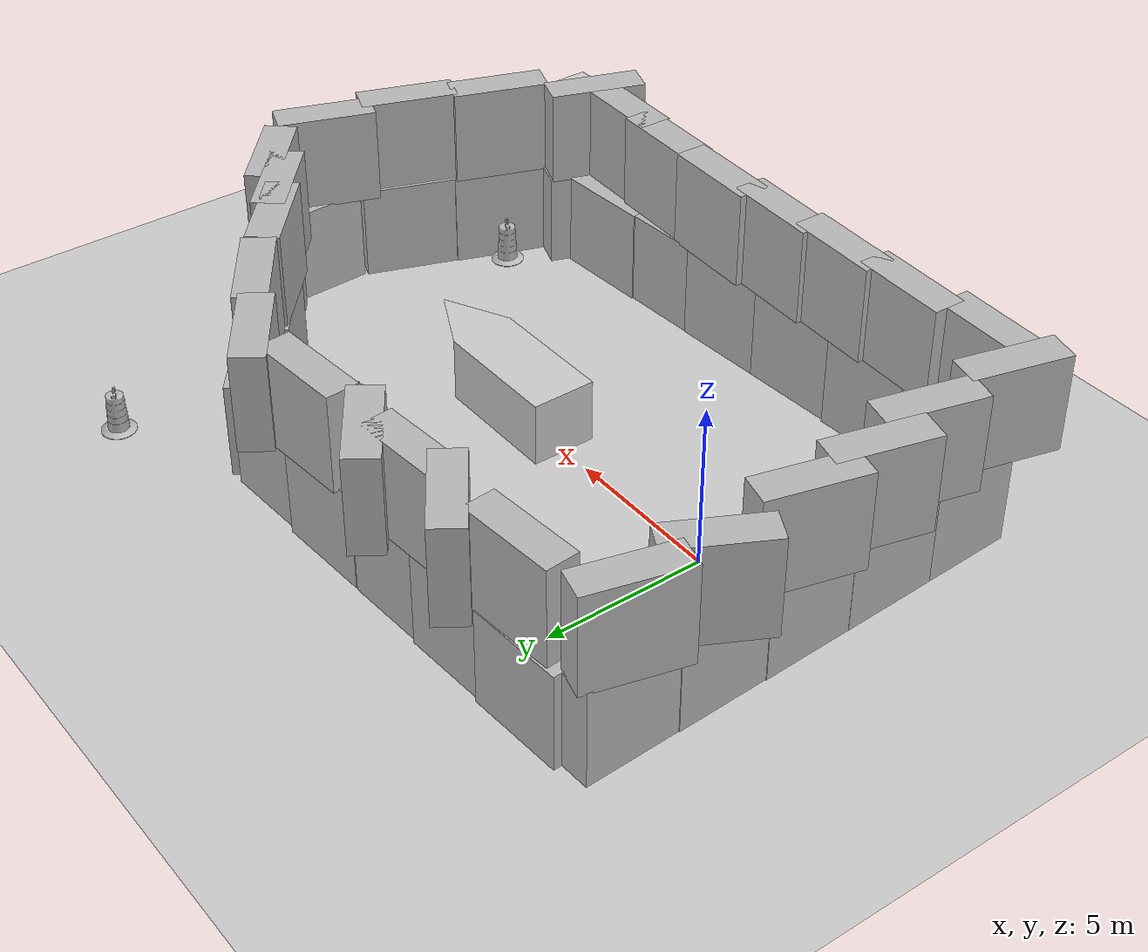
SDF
<sdf version="1.7">
 <world name="ship_world_vins">
  <light name="sun" type="directional">
   <pose>0 0 10 0 -0 0</pose>
   <diffuse>0.8 0.8 0.8 1</diffuse>
   <specular>0.2 0.2 0.2 1</specular>
   <attenuation>
    <range>1000</range>
    <constant>0.9</constant>
    <linear>0.01</linear>
    <quadratic>0.001</quadratic>
   </attenuation>
   <direction>-0.5 0.1 -0.9</direction>
   <spot><inner_angle>0</inner_angle><outer_angle>0</outer_angle><falloff>0</falloff></spot>
  </light>
  <model name="ground_plane">
   <static>1</static>
   <link name="link">
    <collision name="collision">
     <geometry><plane><normal>0 0 1</normal><size>100 100</size></plane></geometry>
     <surface>
      <contact><collide_bitmask>65535</collide_bitmask></contact>
      <friction><ode><mu>100</mu><mu2>50</mu2></ode></friction>
     </surface>
    </collision>
    <visual name="visual">
     <cast_shadows>0</cast_shadows>
     <geometry><plane><normal>0 0 1</normal><size>100 100</size></plane></geometry>
     <material>
      <script><uri>file://media/materials/scripts/gazebo.material</uri><name>Gazebo/Grey</name></script>
     </material>
    </visual>
   </link>
  </model>
  <light name="sunlight" type="directional">
   <pose>0 0 10 0 -0 0</pose>
   <diffuse>0.8 0.8 0.8 1</diffuse>
   <specular>0.2 0.2 0.2 1</specular>
   <attenuation>
    <range>1000</range>
    <constant>0.9</constant>
    <linear>0.01</linear>
    <quadratic>0.001</quadratic>
   </attenuation>
   <direction>-0.5 0.1 -0.9</direction>
   <spot><inner_angle>0</inner_angle><outer_angle>0</outer_angle><falloff>0</falloff></spot>
  </light>
  <light name="ambient_light" type="ambient">
   <direction>0 0 -1</direction>
   <attenuation><range>10</range></attenuation>
   <spot><inner_angle>0</inner_angle><outer_angle>0</outer_angle><falloff>0</falloff></spot>
   <color>0.4 0.4 0.4 1</color>
  </light>
  <model name="vins_feature_1">
   <static>1</static>
   <link name="link">
    <inertial><mass>1</mass></inertial>
    <collision name="back">
     <pose>0 0.005 0.6 0 -0 0</pose>
     <geometry><box><size>0.9 0.01 1.2</size></box></geometry>
    </collision>
    <visual name="visual1">
     <pose>0 0.005 0.6 0 -0 0</pose>
     <geometry><box><size>0.9 0.01 1.2</size></box></geometry>
     <material>
      <script><uri>file://media/materials/scripts/gazebo.material</uri><name>Gazebo/Wood</name></script>
     </material>
    </visual>
    <collision name="left_side">
     <pose>0.45 -0.195 0.6 0 -0 0</pose>
     <geometry><box><size>0.02 0.4 1.2</size></box></geometry>
    </collision>
    <visual name="visual2">
     <pose>0.45 -0.195 0.6 0 -0 0</pose>
     <geometry><box><size>0.02 0.4 1.2</size></box></geometry>
     <material>
      <script><uri>file://media/materials/scripts/gazebo.material</uri><name>Gazebo/Wood</name></script>
     </material>
    </visual>
    <collision name="right_side">
     <pose>-0.45 -0.195 0.6 0 -0 0</pose>
     <geometry><box><size>0.02 0.4 1.2</size></box></geometry>
    </collision>
    <visual name="visual3">
     <pose>-0.45 -0.195 0.6 0 -0 0</pose>
     <geometry><box><size>0.02 0.4 1.2</size></box></geometry>
     <material>
      <script><uri>file://media/materials/scripts/gazebo.material</uri><name>Gazebo/Wood</name></script>
     </material>
    </visual>
    <collision name="bottom">
     <pose>0 -0.195 0.03 0 -0 0</pose>
     <geometry><box><size>0.88 0.4 0.06</size></box></geometry>
    </collision>
    <visual name="visual4">
     <pose>0 -0.195 0.03 0 -0 0</pose>
     <geometry><box><size>0.88 0.4 0.06</size></box></geometry>
     <material>
      <script><uri>file://media/materials/scripts/gazebo.material</uri><name>Gazebo/Wood</name></script>
     </material>
    </visual>
    <collision name="top">
     <pose>0 -0.195 1.19 0 -0 0</pose>
     <geometry><box><size>0.88 0.4 0.02</size></box></geometry>
    </collision>
    <visual name="visual5">
     <pose>0 -0.195 1.19 0 -0 0</pose>
     <geometry><box><size>0.88 0.4 0.02</size></box></geometry>
     <material>
      <script><uri>file://media/materials/scripts/gazebo.material</uri><name>Gazebo/Wood</name></script>
     </material>
    </visual>
    <collision name="low_shelf">
     <pose>0 -0.195 0.43 0 -0 0</pose>
     <geometry><box><size>0.88 0.4 0.02</size></box></geometry>
    </collision>
    <visual name="visual6">
     <pose>0 -0.195 0.43 0 -0 0</pose>
     <geometry><box><size>0.88 0.4 0.02</size></box></geometry>
     <material>
      <script><uri>file://media/materials/scripts/gazebo.material</uri><name>Gazebo/Wood</name></script>
     </material>
    </visual>
    <collision name="high_shelf">
     <pose>0 -0.195 0.8 0 -0 0</pose>
     <geometry><box><size>0.88 0.4 0.02</size></box></geometry>
    </collision>
    <visual name="visual7">
     <pose>0 -0.195 0.8 0 -0 0</pose>
     <geometry><box><size>0.88 0.4 0.02</size></box></geometry>
     <material>
      <script><uri>file://media/materials/scripts/gazebo.material</uri><name>Gazebo/Wood</name></script>
     </material>
    </visual>
   </link>
   <pose>10.9332 4.81729 0 0 -0 1.40247</pose>
  </model>
  <model name="vins_feature_2">
   <link name="link">
    <inertial>
     <pose>0 0 0.4 0 -0 0</pose>
     <mass>500</mass>
     <inertia><ixx>51.2096</ixx><iyy>51.2096</iyy><izz>25</izz><ixy>0</ixy><ixz>0</ixz><iyz>0</iyz></inertia>
    </inertial>
    <collision name="collision">
     <geometry><mesh><uri>model://construction_barrel/meshes/construction_barrel.dae</uri></mesh></geometry>
    </collision>
    <visual name="visual">
     <geometry><mesh><uri>model://construction_barrel/meshes/construction_barrel.dae</uri></mesh></geometry>
    </visual>
   </link>
   <pose>13.3741 10.1126 0.891225 0 -0 2.65101</pose>
   <static>1</static>
  </model>
  <model name="vins_feature_12">
   <static>1</static>
   <link name="chassis">
    <pose>0 0 1.5 0 -0 0</pose>
    <collision name="collision"><geometry><box><size>3 1 3</size></box></geometry></collision>
    <visual name="visual">
     <geometry><mesh><uri>model://brick_box_3x1x3/meshes/simple_box.dae</uri><scale>3 1 3</scale></mesh></geometry>
     <material>
      <script>
       <uri>model://brick_box_3x1x3/materials/scripts</uri>
       <uri>model://brick_box_3x1x3/materials/textures</uri>
       <name>BrickBox/Diffuse</name>
      </script>
     </material>
    </visual>
   </link>
   <pose>17.1535 -2.10097 0 0 -0 1.22186</pose>
  </model>
  <physics type="ode">
   <max_step_size>0.002</max_step_size>
   <real_time_factor>1</real_time_factor>
   <real_time_update_rate>500</real_time_update_rate>
   <gravity>0 0 -9.81</gravity>
  </physics>
  <scene>
   <ambient>0.4 0.4 0.4 1</ambient>
   <background>0.7 0.8 1 1</background>
   <shadows>1</shadows>
   <grid>1</grid>
  </scene>
  <gravity>0 0 -9.8</gravity>
  <magnetic_field>6e-06 2.3e-05 -4.2e-05</magnetic_field>
  <atmosphere type="adiabatic"/>
  <spherical_coordinates>
   <surface_model>EARTH_WGS84</surface_model>
   <latitude_deg>0</latitude_deg>
   <longitude_deg>0</longitude_deg>
   <elevation>0</elevation>
   <heading_deg>0</heading_deg>
  </spherical_coordinates>
  <model name="vins_feature_12_clone">
   <static>1</static>
   <link name="chassis">
    <pose>0 0 1.5 0 -0 0</pose>
    <collision name="collision"><geometry><box><size>3 1 3</size></box></geometry></collision>
    <visual name="visual">
     <geometry><mesh><uri>model://brick_box_3x1x3/meshes/simple_box.dae</uri><scale>3 1 3</scale></mesh></geometry>
     <material>
      <script>
       <uri>model://brick_box_3x1x3/materials/scripts</uri>
       <uri>model://brick_box_3x1x3/materials/textures</uri>
       <name>BrickBox/Diffuse</name>
      </script>
     </material>
    </visual>
   </link>
   <pose>16.1084 -4.86008 0 0 -0 1.22186</pose>
  </model>
  <model name="vins_feature_12_clone_0">
   <static>1</static>
   <link name="chassis">
    <pose>0 0 1.5 0 -0 0</pose>
    <collision name="collision"><geometry><box><size>3 1 3</size></box></geometry></collision>
    <visual name="visual">
     <geometry><mesh><uri>model://brick_box_3x1x3/meshes/simple_box.dae</uri><scale>3 1 3</scale></mesh></geometry>
     <material>
      <script>
       <uri>model://brick_box_3x1x3/materials/scripts</uri>
       <uri>model://brick_box_3x1x3/materials/textures</uri>
       <name>BrickBox/Diffuse</name>
      </script>
     </material>
    </visual>
   </link>
   <pose>14.284 -7.27429 0 0 -0 1.22186</pose>
  </model>
  <model name="vins_feature_12_clone_1">
   <static>1</static>
   <link name="chassis">
    <pose>0 0 1.5 0 -0 0</pose>
    <collision name="collision"><geometry><box><size>3 1 3</size></box></geometry></collision>
    <visual name="visual">
     <geometry><mesh><uri>model://brick_box_3x1x3/meshes/simple_box.dae</uri><scale>3 1 3</scale></mesh></geometry>
     <material>
      <script>
       <uri>model://brick_box_3x1x3/materials/scripts</uri>
       <uri>model://brick_box_3x1x3/materials/textures</uri>
       <name>BrickBox/Diffuse</name>
      </script>
     </material>
    </visual>
   </link>
   <pose>7.17482 -7.1618 0 0 -0 0.055058</pose>
  </model>
  <model name="vins_feature_12_clone_1_clone">
   <static>1</static>
   <link name="chassis">
    <pose>0 0 1.5 0 -0 0</pose>
    <collision name="collision"><geometry><box><size>3 1 3</size></box></geometry></collision>
    <visual name="visual">
     <geometry><mesh><uri>model://brick_box_3x1x3/meshes/simple_box.dae</uri><scale>3 1 3</scale></mesh></geometry>
     <material>
      <script>
       <uri>model://brick_box_3x1x3/materials/scripts</uri>
       <uri>model://brick_box_3x1x3/materials/textures</uri>
       <name>BrickBox/Diffuse</name>
      </script>
     </material>
    </visual>
   </link>
   <pose>4.25347 -7.31543 0 0 -0 0.055058</pose>
  </model>
  <model name="vins_feature_12_clone_1_clone_0">
   <static>1</static>
   <link name="chassis">
    <pose>0 0 1.5 0 -0 0</pose>
    <collision name="collision"><geometry><box><size>3 1 3</size></box></geometry></collision>
    <visual name="visual">
     <geometry><mesh><uri>model://brick_box_3x1x3/meshes/simple_box.dae</uri><scale>3 1 3</scale></mesh></geometry>
     <material>
      <script>
       <uri>model://brick_box_3x1x3/materials/scripts</uri>
       <uri>model://brick_box_3x1x3/materials/textures</uri>
       <name>BrickBox/Diffuse</name>
      </script>
     </material>
    </visual>
   </link>
   <pose>1.23373 -7.41035 0 0 -0 0.055058</pose>
  </model>
  <model name="vins_feature_12_clone_1_clone_1">
   <static>1</static>
   <link name="chassis">
    <pose>0 0 1.5 0 -0 0</pose>
    <collision name="collision"><geometry><box><size>3 1 3</size></box></geometry></collision>
    <visual name="visual">
     <geometry><mesh><uri>model://brick_box_3x1x3/meshes/simple_box.dae</uri><scale>3 1 3</scale></mesh></geometry>
     <material>
      <script>
       <uri>model://brick_box_3x1x3/materials/scripts</uri>
       <uri>model://brick_box_3x1x3/materials/textures</uri>
       <name>BrickBox/Diffuse</name>
      </script>
     </material>
    </visual>
   </link>
   <pose>-1.64191 -7.50931 0 0 -0 0.055058</pose>
  </model>
  <model name="vins_feature_12_clone_1_clone_2">
   <static>1</static>
   <link name="chassis">
    <pose>0 0 1.5 0 -0 0</pose>
    <collision name="collision"><geometry><box><size>3 1 3</size></box></geometry></collision>
    <visual name="visual">
     <geometry><mesh><uri>model://brick_box_3x1x3/meshes/simple_box.dae</uri><scale>3 1 3</scale></mesh></geometry>
     <material>
      <script>
       <uri>model://brick_box_3x1x3/materials/scripts</uri>
       <uri>model://brick_box_3x1x3/materials/textures</uri>
       <name>BrickBox/Diffuse</name>
      </script>
     </material>
    </visual>
   </link>
   <pose>-3.65107 -5.62983 0 0 0 -1.52881</pose>
  </model>
  <model name="vins_feature_12_clone_1_clone_2_clone">
   <static>1</static>
   <link name="chassis">
    <pose>0 0 1.5 0 -0 0</pose>
    <collision name="collision"><geometry><box><size>3 1 3</size></box></geometry></collision>
    <visual name="visual">
     <geometry><mesh><uri>model://brick_box_3x1x3/meshes/simple_box.dae</uri><scale>3 1 3</scale></mesh></geometry>
     <material>
      <script>
       <uri>model://brick_box_3x1x3/materials/scripts</uri>
       <uri>model://brick_box_3x1x3/materials/textures</uri>
       <name>BrickBox/Diffuse</name>
      </script>
     </material>
    </visual>
   </link>
   <pose>-3.77071 -2.82657 0 0 0 -1.52881</pose>
  </model>
  <model name="vins_feature_12_clone_1_clone_2_clone_0">
   <static>1</static>
   <link name="chassis">
    <pose>0 0 1.5 0 -0 0</pose>
    <collision name="collision"><geometry><box><size>3 1 3</size></box></geometry></collision>
    <visual name="visual">
     <geometry><mesh><uri>model://brick_box_3x1x3/meshes/simple_box.dae</uri><scale>3 1 3</scale></mesh></geometry>
     <material>
      <script>
       <uri>model://brick_box_3x1x3/materials/scripts</uri>
       <uri>model://brick_box_3x1x3/materials/textures</uri>
       <name>BrickBox/Diffuse</name>
      </script>
     </material>
    </visual>
   </link>
   <pose>-3.88501 0.04497 0 0 0 -1.52881</pose>
  </model>
  <model name="vins_feature_12_clone_1_clone_2_clone_1">
   <static>1</static>
   <link name="chassis">
    <pose>0 0 1.5 0 -0 0</pose>
    <collision name="collision"><geometry><box><size>3 1 3</size></box></geometry></collision>
    <visual name="visual">
     <geometry><mesh><uri>model://brick_box_3x1x3/meshes/simple_box.dae</uri><scale>3 1 3</scale></mesh></geometry>
     <material>
      <script>
       <uri>model://brick_box_3x1x3/materials/scripts</uri>
       <uri>model://brick_box_3x1x3/materials/textures</uri>
       <name>BrickBox/Diffuse</name>
      </script>
     </material>
    </visual>
   </link>
   <pose>-3.98219 2.91307 0 0 0 -1.52881</pose>
  </model>
  <model name="vins_feature_12_clone_1_clone_2_clone_2">
   <static>1</static>
   <link name="chassis">
    <pose>0 0 1.5 0 -0 0</pose>
    <collision name="collision"><geometry><box><size>3 1 3</size></box></geometry></collision>
    <visual name="visual">
     <geometry><mesh><uri>model://brick_box_3x1x3/meshes/simple_box.dae</uri><scale>3 1 3</scale></mesh></geometry>
     <material>
      <script>
       <uri>model://brick_box_3x1x3/materials/scripts</uri>
       <uri>model://brick_box_3x1x3/materials/textures</uri>
       <name>BrickBox/Diffuse</name>
      </script>
     </material>
    </visual>
   </link>
   <pose>-4.07822 5.80501 0 0 0 -1.52881</pose>
  </model>
  <model name="vins_feature_12_clone_1_clone_3">
   <static>1</static>
   <link name="chassis">
    <pose>0 0 1.5 0 -0 0</pose>
    <collision name="collision"><geometry><box><size>3 1 3</size></box></geometry></collision>
    <visual name="visual">
     <geometry><mesh><uri>model://brick_box_3x1x3/meshes/simple_box.dae</uri><scale>3 1 3</scale></mesh></geometry>
     <material>
      <script>
       <uri>model://brick_box_3x1x3/materials/scripts</uri>
       <uri>model://brick_box_3x1x3/materials/textures</uri>
       <name>BrickBox/Diffuse</name>
      </script>
     </material>
    </visual>
   </link>
   <pose>-2.21839 7.1515 0 0 -0 0.055058</pose>
  </model>
  <model name="vins_feature_12_clone_1_clone_4">
   <static>1</static>
   <link name="chassis">
    <pose>0 0 1.5 0 -0 0</pose>
    <collision name="collision"><geometry><box><size>3 1 3</size></box></geometry></collision>
    <visual name="visual">
     <geometry><mesh><uri>model://brick_box_3x1x3/meshes/simple_box.dae</uri><scale>3 1 3</scale></mesh></geometry>
     <material>
      <script>
       <uri>model://brick_box_3x1x3/materials/scripts</uri>
       <uri>model://brick_box_3x1x3/materials/textures</uri>
       <name>BrickBox/Diffuse</name>
      </script>
     </material>
    </visual>
   </link>
   <pose>0.451514 7.21112 0 0 -0 0.055058</pose>
  </model>
  <model name="vins_feature_12_clone_1_clone_5">
   <static>1</static>
   <link name="chassis">
    <pose>0 0 1.5 0 -0 0</pose>
    <collision name="collision"><geometry><box><size>3 1 3</size></box></geometry></collision>
    <visual name="visual">
     <geometry><mesh><uri>model://brick_box_3x1x3/meshes/simple_box.dae</uri><scale>3 1 3</scale></mesh></geometry>
     <material>
      <script>
       <uri>model://brick_box_3x1x3/materials/scripts</uri>
       <uri>model://brick_box_3x1x3/materials/textures</uri>
       <name>BrickBox/Diffuse</name>
      </script>
     </material>
    </visual>
   </link>
   <pose>3.0258 7.27709 0 0 -0 0.055058</pose>
  </model>
  <model name="vins_feature_12_clone_1_clone_6">
   <static>1</static>
   <link name="chassis">
    <pose>0 0 1.5 0 -0 0</pose>
    <collision name="collision"><geometry><box><size>3 1 3</size></box></geometry></collision>
    <visual name="visual">
     <geometry><mesh><uri>model://brick_box_3x1x3/meshes/simple_box.dae</uri><scale>3 1 3</scale></mesh></geometry>
     <material>
      <script>
       <uri>model://brick_box_3x1x3/materials/scripts</uri>
       <uri>model://brick_box_3x1x3/materials/textures</uri>
       <name>BrickBox/Diffuse</name>
      </script>
     </material>
    </visual>
   </link>
   <pose>6.08564 7.43302 0 0 -0 0.055058</pose>
  </model>
  <model name="vins_feature_12_clone_1_clone_7">
   <static>1</static>
   <link name="chassis">
    <pose>0 0 1.5 0 -0 0</pose>
    <collision name="collision"><geometry><box><size>3 1 3</size></box></geometry></collision>
    <visual name="visual">
     <geometry><mesh><uri>model://brick_box_3x1x3/meshes/simple_box.dae</uri><scale>3 1 3</scale></mesh></geometry>
     <material>
      <script>
       <uri>model://brick_box_3x1x3/materials/scripts</uri>
       <uri>model://brick_box_3x1x3/materials/textures</uri>
       <name>BrickBox/Diffuse</name>
      </script>
     </material>
    </visual>
   </link>
   <pose>8.81832 7.46001 0 0 -0 0.055058</pose>
  </model>
  <model name="vins_feature_12_clone_1_clone_8">
   <static>1</static>
   <link name="chassis">
    <pose>0 0 1.5 0 -0 0</pose>
    <collision name="collision"><geometry><box><size>3 1 3</size></box></geometry></collision>
    <visual name="visual">
     <geometry><mesh><uri>model://brick_box_3x1x3/meshes/simple_box.dae</uri><scale>3 1 3</scale></mesh></geometry>
     <material>
      <script>
       <uri>model://brick_box_3x1x3/materials/scripts</uri>
       <uri>model://brick_box_3x1x3/materials/textures</uri>
       <name>BrickBox/Diffuse</name>
      </script>
     </material>
    </visual>
   </link>
   <pose>11.5594 6.7674 0 0 0 -0.662959</pose>
  </model>
  <model name="vins_feature_12_clone_1_clone_8_clone">
   <static>1</static>
   <link name="chassis">
    <pose>0 0 1.5 0 -0 0</pose>
    <collision name="collision"><geometry><box><size>3 1 3</size></box></geometry></collision>
    <visual name="visual">
     <geometry><mesh><uri>model://brick_box_3x1x3/meshes/simple_box.dae</uri><scale>3 1 3</scale></mesh></geometry>
     <material>
      <script>
       <uri>model://brick_box_3x1x3/materials/scripts</uri>
       <uri>model://brick_box_3x1x3/materials/textures</uri>
       <name>BrickBox/Diffuse</name>
      </script>
     </material>
    </visual>
   </link>
   <pose>13.5456 4.68205 0 0 0 -0.662959</pose>
  </model>
  <model name="vins_feature_12_clone_1_clone_2_clone_2_clone">
   <static>1</static>
   <link name="chassis">
    <pose>0 0 1.5 0 -0 0</pose>
    <collision name="collision"><geometry><box><size>3 1 3</size></box></geometry></collision>
    <visual name="visual">
     <geometry><mesh><uri>model://brick_box_3x1x3/meshes/simple_box.dae</uri><scale>3 1 3</scale></mesh></geometry>
     <material>
      <script>
       <uri>model://brick_box_3x1x3/materials/scripts</uri>
       <uri>model://brick_box_3x1x3/materials/textures</uri>
       <name>BrickBox/Diffuse</name>
      </script>
     </material>
    </visual>
   </link>
   <pose>17.7059 1.06689 0 0 0 -1.52881</pose>
  </model>
  <model name="vins_feature_12_clone_0_clone">
   <static>1</static>
   <link name="chassis">
    <pose>0 0 1.5 0 -0 0</pose>
    <collision name="collision"><geometry><box><size>3 1 3</size></box></geometry></collision>
    <visual name="visual">
     <geometry><mesh><uri>model://brick_box_3x1x3/meshes/simple_box.dae</uri><scale>3 1 3</scale></mesh></geometry>
     <material>
      <script>
       <uri>model://brick_box_3x1x3/materials/scripts</uri>
       <uri>model://brick_box_3x1x3/materials/textures</uri>
       <name>BrickBox/Diffuse</name>
      </script>
     </material>
    </visual>
   </link>
   <pose>14.2449 -7.31994 2.9432 0 -0 1.22186</pose>
  </model>
  <model name="vins_feature_12_clone_0_clone_clone">
   <static>1</static>
   <link name="chassis">
    <pose>0 0 1.5 0 -0 0</pose>
    <collision name="collision"><geometry><box><size>3 1 3</size></box></geometry></collision>
    <visual name="visual">
     <geometry><mesh><uri>model://brick_box_3x1x3/meshes/simple_box.dae</uri><scale>3 1 3</scale></mesh></geometry>
     <material>
      <script>
       <uri>model://brick_box_3x1x3/materials/scripts</uri>
       <uri>model://brick_box_3x1x3/materials/textures</uri>
       <name>BrickBox/Diffuse</name>
      </script>
     </material>
    </visual>
   </link>
   <pose>16.0742 -4.91824 2.9432 0 -0 1.22186</pose>
  </model>
  <model name="vins_feature_12_clone_0_clone_clone_0">
   <static>1</static>
   <link name="chassis">
    <pose>0 0 1.5 0 -0 0</pose>
    <collision name="collision"><geometry><box><size>3 1 3</size></box></geometry></collision>
    <visual name="visual">
     <geometry><mesh><uri>model://brick_box_3x1x3/meshes/simple_box.dae</uri><scale>3 1 3</scale></mesh></geometry>
     <material>
      <script>
       <uri>model://brick_box_3x1x3/materials/scripts</uri>
       <uri>model://brick_box_3x1x3/materials/textures</uri>
       <name>BrickBox/Diffuse</name>
      </script>
     </material>
    </visual>
   </link>
   <pose>17.2031 -2.29228 2.9432 0 -0 1.22186</pose>
  </model>
  <model name="vins_feature_12_clone_0_clone_clone_1">
   <static>1</static>
   <link name="chassis">
    <pose>0 0 1.5 0 -0 0</pose>
    <collision name="collision"><geometry><box><size>3 1 3</size></box></geometry></collision>
    <visual name="visual">
     <geometry><mesh><uri>model://brick_box_3x1x3/meshes/simple_box.dae</uri><scale>3 1 3</scale></mesh></geometry>
     <material>
      <script>
       <uri>model://brick_box_3x1x3/materials/scripts</uri>
       <uri>model://brick_box_3x1x3/materials/textures</uri>
       <name>BrickBox/Diffuse</name>
      </script>
     </material>
    </visual>
   </link>
   <pose>17.7014 0.378235 2.9432 0 -0 1.22186</pose>
  </model>
  <model name="vins_feature_12_clone_0_clone_clone_2">
   <static>1</static>
   <link name="chassis">
    <pose>0 0 1.5 0 -0 0</pose>
    <collision name="collision"><geometry><box><size>3 1 3</size></box></geometry></collision>
    <visual name="visual">
     <geometry><mesh><uri>model://brick_box_3x1x3/meshes/simple_box.dae</uri><scale>3 1 3</scale></mesh></geometry>
     <material>
      <script>
       <uri>model://brick_box_3x1x3/materials/scripts</uri>
       <uri>model://brick_box_3x1x3/materials/textures</uri>
       <name>BrickBox/Diffuse</name>
      </script>
     </material>
    </visual>
   </link>
   <pose>13.6663 4.52867 2.9432 0 -0 2.41798</pose>
  </model>
  <model name="vins_feature_12_clone_0_clone_clone_3">
   <static>1</static>
   <link name="chassis">
    <pose>0 0 1.5 0 -0 0</pose>
    <collision name="collision"><geometry><box><size>3 1 3</size></box></geometry></collision>
    <visual name="visual">
     <geometry><mesh><uri>model://brick_box_3x1x3/meshes/simple_box.dae</uri><scale>3 1 3</scale></mesh></geometry>
     <material>
      <script>
       <uri>model://brick_box_3x1x3/materials/scripts</uri>
       <uri>model://brick_box_3x1x3/materials/textures</uri>
       <name>BrickBox/Diffuse</name>
      </script>
     </material>
    </visual>
   </link>
   <pose>11.3544 6.44078 2.9432 0 -0 2.53843</pose>
  </model>
  <model name="vins_feature_12_clone_0_clone_clone_3_clone">
   <static>1</static>
   <link name="chassis">
    <pose>0 0 1.5 0 -0 0</pose>
    <collision name="collision"><geometry><box><size>3 1 3</size></box></geometry></collision>
    <visual name="visual">
     <geometry><mesh><uri>model://brick_box_3x1x3/meshes/simple_box.dae</uri><scale>3 1 3</scale></mesh></geometry>
     <material>
      <script>
       <uri>model://brick_box_3x1x3/materials/scripts</uri>
       <uri>model://brick_box_3x1x3/materials/textures</uri>
       <name>BrickBox/Diffuse</name>
      </script>
     </material>
    </visual>
   </link>
   <pose>8.9737 7.88408 2.9432 0 -0 2.53843</pose>
  </model>
  <model name="vins_feature_12_clone_0_clone_clone_3_clone_0">
   <static>1</static>
   <link name="chassis">
    <pose>0 0 1.5 0 -0 0</pose>
    <collision name="collision"><geometry><box><size>3 1 3</size></box></geometry></collision>
    <visual name="visual">
     <geometry><mesh><uri>model://brick_box_3x1x3/meshes/simple_box.dae</uri><scale>3 1 3</scale></mesh></geometry>
     <material>
      <script>
       <uri>model://brick_box_3x1x3/materials/scripts</uri>
       <uri>model://brick_box_3x1x3/materials/textures</uri>
       <name>BrickBox/Diffuse</name>
      </script>
     </material>
    </visual>
   </link>
   <pose>6.57189 7.6482 2.9432 0 0 -3.06303</pose>
  </model>
  <model name="vins_feature_12_clone_0_clone_clone_3_clone_1">
   <static>1</static>
   <link name="chassis">
    <pose>0 0 1.5 0 -0 0</pose>
    <collision name="collision"><geometry><box><size>3 1 3</size></box></geometry></collision>
    <visual name="visual">
     <geometry><mesh><uri>model://brick_box_3x1x3/meshes/simple_box.dae</uri><scale>3 1 3</scale></mesh></geometry>
     <material>
      <script>
       <uri>model://brick_box_3x1x3/materials/scripts</uri>
       <uri>model://brick_box_3x1x3/materials/textures</uri>
       <name>BrickBox/Diffuse</name>
      </script>
     </material>
    </visual>
   </link>
   <pose>3.71285 7.79924 2.9432 0 -0 2.53843</pose>
  </model>
  <model name="vins_feature_12_clone_0_clone_clone_3_clone_2">
   <static>1</static>
   <link name="chassis">
    <pose>0 0 1.5 0 -0 0</pose>
    <collision name="collision"><geometry><box><size>3 1 3</size></box></geometry></collision>
    <visual name="visual">
     <geometry><mesh><uri>model://brick_box_3x1x3/meshes/simple_box.dae</uri><scale>3 1 3</scale></mesh></geometry>
     <material>
      <script>
       <uri>model://brick_box_3x1x3/materials/scripts</uri>
       <uri>model://brick_box_3x1x3/materials/textures</uri>
       <name>BrickBox/Diffuse</name>
      </script>
     </material>
    </visual>
   </link>
   <pose>0.352993 7.6035 2.9432 0 -0 2.53843</pose>
  </model>
  <model name="vins_feature_12_clone_0_clone_clone_3_clone_0_clone">
   <static>1</static>
   <link name="chassis">
    <pose>0 0 1.5 0 -0 0</pose>
    <collision name="collision"><geometry><box><size>3 1 3</size></box></geometry></collision>
    <visual name="visual">
     <geometry><mesh><uri>model://brick_box_3x1x3/meshes/simple_box.dae</uri><scale>3 1 3</scale></mesh></geometry>
     <material>
      <script>
       <uri>model://brick_box_3x1x3/materials/scripts</uri>
       <uri>model://brick_box_3x1x3/materials/textures</uri>
       <name>BrickBox/Diffuse</name>
      </script>
     </material>
    </visual>
   </link>
   <pose>2.2028 7.33983 2.9432 0 0 -3.06303</pose>
  </model>
  <model name="vins_feature_12_clone_0_clone_clone_3_clone_0_clone_0">
   <static>1</static>
   <link name="chassis">
    <pose>0 0 1.5 0 -0 0</pose>
    <collision name="collision"><geometry><box><size>3 1 3</size></box></geometry></collision>
    <visual name="visual">
     <geometry><mesh><uri>model://brick_box_3x1x3/meshes/simple_box.dae</uri><scale>3 1 3</scale></mesh></geometry>
     <material>
      <script>
       <uri>model://brick_box_3x1x3/materials/scripts</uri>
       <uri>model://brick_box_3x1x3/materials/textures</uri>
       <name>BrickBox/Diffuse</name>
      </script>
     </material>
    </visual>
   </link>
   <pose>-1.87481 7.13053 2.9432 0 0 -3.06303</pose>
  </model>
  <model name="vins_feature_12_clone_0_clone_clone_3_clone_0_clone_1">
   <static>1</static>
   <link name="chassis">
    <pose>0 0 1.5 0 -0 0</pose>
    <collision name="collision"><geometry><box><size>3 1 3</size></box></geometry></collision>
    <visual name="visual">
     <geometry><mesh><uri>model://brick_box_3x1x3/meshes/simple_box.dae</uri><scale>3 1 3</scale></mesh></geometry>
     <material>
      <script>
       <uri>model://brick_box_3x1x3/materials/scripts</uri>
       <uri>model://brick_box_3x1x3/materials/textures</uri>
       <name>BrickBox/Diffuse</name>
      </script>
     </material>
    </visual>
   </link>
   <pose>-4.43408 5.91316 2.9432 0 0 -1.82887</pose>
  </model>
  <model name="vins_feature_12_clone_0_clone_clone_3_clone_0_clone_1_clone">
   <static>1</static>
   <link name="chassis">
    <pose>0 0 1.5 0 -0 0</pose>
    <collision name="collision"><geometry><box><size>3 1 3</size></box></geometry></collision>
    <visual name="visual">
     <geometry><mesh><uri>model://brick_box_3x1x3/meshes/simple_box.dae</uri><scale>3 1 3</scale></mesh></geometry>
     <material>
      <script>
       <uri>model://brick_box_3x1x3/materials/scripts</uri>
       <uri>model://brick_box_3x1x3/materials/textures</uri>
       <name>BrickBox/Diffuse</name>
      </script>
     </material>
    </visual>
   </link>
   <pose>-4.62571 3.54857 2.9432 0 0 -2.06001</pose>
  </model>
  <model name="vins_feature_12_clone_0_clone_clone_3_clone_0_clone_1_clone_0">
   <static>1</static>
   <link name="chassis">
    <pose>0 0 1.5 0 -0 0</pose>
    <collision name="collision"><geometry><box><size>3 1 3</size></box></geometry></collision>
    <visual name="visual">
     <geometry><mesh><uri>model://brick_box_3x1x3/meshes/simple_box.dae</uri><scale>3 1 3</scale></mesh></geometry>
     <material>
      <script>
       <uri>model://brick_box_3x1x3/materials/scripts</uri>
       <uri>model://brick_box_3x1x3/materials/textures</uri>
       <name>BrickBox/Diffuse</name>
      </script>
     </material>
    </visual>
   </link>
   <pose>-4.36191 0.486087 2.9432 0 0 -1.82887</pose>
  </model>
  <model name="vins_feature_12_clone_0_clone_clone_3_clone_0_clone_1_clone_1">
   <static>1</static>
   <link name="chassis">
    <pose>0 0 1.5 0 -0 0</pose>
    <collision name="collision"><geometry><box><size>3 1 3</size></box></geometry></collision>
    <visual name="visual">
     <geometry><mesh><uri>model://brick_box_3x1x3/meshes/simple_box.dae</uri><scale>3 1 3</scale></mesh></geometry>
     <material>
      <script>
       <uri>model://brick_box_3x1x3/materials/scripts</uri>
       <uri>model://brick_box_3x1x3/materials/textures</uri>
       <name>BrickBox/Diffuse</name>
      </script>
     </material>
    </visual>
   </link>
   <pose>-4.30273 -1.83549 2.9432 0 0 -1.82887</pose>
  </model>
  <model name="vins_feature_12_clone_0_clone_clone_3_clone_0_clone_1_clone_2">
   <static>1</static>
   <link name="chassis">
    <pose>0 0 1.5 0 -0 0</pose>
    <collision name="collision"><geometry><box><size>3 1 3</size></box></geometry></collision>
    <visual name="visual">
     <geometry><mesh><uri>model://brick_box_3x1x3/meshes/simple_box.dae</uri><scale>3 1 3</scale></mesh></geometry>
     <material>
      <script>
       <uri>model://brick_box_3x1x3/materials/scripts</uri>
       <uri>model://brick_box_3x1x3/materials/textures</uri>
       <name>BrickBox/Diffuse</name>
      </script>
     </material>
    </visual>
   </link>
   <pose>-3.84586 -3.90694 2.9432 0 0 -1.82887</pose>
  </model>
  <model name="vins_feature_12_clone_0_clone_clone_3_clone_0_clone_1_clone_3">
   <static>1</static>
   <link name="chassis">
    <pose>0 0 1.5 0 -0 0</pose>
    <collision name="collision"><geometry><box><size>3 1 3</size></box></geometry></collision>
    <visual name="visual">
     <geometry><mesh><uri>model://brick_box_3x1x3/meshes/simple_box.dae</uri><scale>3 1 3</scale></mesh></geometry>
     <material>
      <script>
       <uri>model://brick_box_3x1x3/materials/scripts</uri>
       <uri>model://brick_box_3x1x3/materials/textures</uri>
       <name>BrickBox/Diffuse</name>
      </script>
     </material>
    </visual>
   </link>
   <pose>-3.86683 -6.85057 2.9432 0 0 -1.82887</pose>
  </model>
  <model name="vins_feature_12_clone_0_clone_clone_3_clone_0_clone_1_clone_3_clone">
   <static>1</static>
   <link name="chassis">
    <pose>0 0 1.5 0 -0 0</pose>
    <collision name="collision"><geometry><box><size>3 1 3</size></box></geometry></collision>
    <visual name="visual">
     <geometry><mesh><uri>model://brick_box_3x1x3/meshes/simple_box.dae</uri><scale>3 1 3</scale></mesh></geometry>
     <material>
      <script>
       <uri>model://brick_box_3x1x3/materials/scripts</uri>
       <uri>model://brick_box_3x1x3/materials/textures</uri>
       <name>BrickBox/Diffuse</name>
      </script>
     </material>
    </visual>
   </link>
   <pose>-2.44934 -7.56093 2.9432 0 0 -0.039864</pose>
  </model>
  <model name="vins_feature_12_clone_0_clone_clone_3_clone_0_clone_1_clone_3_clone_clone">
   <static>1</static>
   <link name="chassis">
    <pose>0 0 1.5 0 -0 0</pose>
    <collision name="collision"><geometry><box><size>3 1 3</size></box></geometry></collision>
    <visual name="visual">
     <geometry><mesh><uri>model://brick_box_3x1x3/meshes/simple_box.dae</uri><scale>3 1 3</scale></mesh></geometry>
     <material>
      <script>
       <uri>model://brick_box_3x1x3/materials/scripts</uri>
       <uri>model://brick_box_3x1x3/materials/textures</uri>
       <name>BrickBox/Diffuse</name>
      </script>
     </material>
    </visual>
   </link>
   <pose>0.250143 -7.28335 2.9432 0 0 -0.039864</pose>
  </model>
  <model name="vins_feature_12_clone_0_clone_clone_3_clone_0_clone_1_clone_3_clone_clone_0">
   <static>1</static>
   <link name="chassis">
    <pose>0 0 1.5 0 -0 0</pose>
    <collision name="collision"><geometry><box><size>3 1 3</size></box></geometry></collision>
    <visual name="visual">
     <geometry><mesh><uri>model://brick_box_3x1x3/meshes/simple_box.dae</uri><scale>3 1 3</scale></mesh></geometry>
     <material>
      <script>
       <uri>model://brick_box_3x1x3/materials/scripts</uri>
       <uri>model://brick_box_3x1x3/materials/textures</uri>
       <name>BrickBox/Diffuse</name>
      </script>
     </material>
    </visual>
   </link>
   <pose>2.79208 -7.20268 2.9432 0 0 -0.039864</pose>
  </model>
  <model name="vins_feature_12_clone_0_clone_clone_3_clone_0_clone_1_clone_3_clone_clone_1">
   <static>1</static>
   <link name="chassis">
    <pose>0 0 1.5 0 -0 0</pose>
    <collision name="collision"><geometry><box><size>3 1 3</size></box></geometry></collision>
    <visual name="visual">
     <geometry><mesh><uri>model://brick_box_3x1x3/meshes/simple_box.dae</uri><scale>3 1 3</scale></mesh></geometry>
     <material>
      <script>
       <uri>model://brick_box_3x1x3/materials/scripts</uri>
       <uri>model://brick_box_3x1x3/materials/textures</uri>
       <name>BrickBox/Diffuse</name>
      </script>
     </material>
    </visual>
   </link>
   <pose>5.25961 -7.14001 2.9432 0 0 -0.039864</pose>
  </model>
  <model name="vins_feature_12_clone_0_clone_clone_3_clone_0_clone_1_clone_3_clone_clone_2">
   <static>1</static>
   <link name="chassis">
    <pose>0 0 1.5 0 -0 0</pose>
    <collision name="collision"><geometry><box><size>3 1 3</size></box></geometry></collision>
    <visual name="visual">
     <geometry><mesh><uri>model://brick_box_3x1x3/meshes/simple_box.dae</uri><scale>3 1 3</scale></mesh></geometry>
     <material>
      <script>
       <uri>model://brick_box_3x1x3/materials/scripts</uri>
       <uri>model://brick_box_3x1x3/materials/textures</uri>
       <name>BrickBox/Diffuse</name>
      </script>
     </material>
    </visual>
   </link>
   <pose>7.77008 -7.03264 2.9432 0 0 -0.039864</pose>
  </model>
  <model name="test">
   <static>1</static>
   <link name="link">
    <visual name="visual">
     <geometry><mesh><uri>model://test.dae</uri><scale>1 1 1</scale></mesh></geometry>
     <material>
      <ambient>0.8 0.8 0.8 1</ambient>
      <diffuse>0.8 0.8 0.8 1</diffuse>
      <specular>0.2 0.2 0.2 1</specular>
     </material>
    </visual>
    <collision name="collision">
     <geometry><mesh><uri>model://test.dae</uri><scale>1 1 1</scale></mesh></geometry>
    </collision>
    <inertial>
     <mass>2.4099</mass>
     <pose>0.999404 0 0.003925 0 -0 0</pose>
     <inertia><ixx>1.61292</ixx><ixy>0</ixy><ixz>0</ixz><iyy>8.04219</iyy><iyz>0</iyz><izz>8.03587</izz></inertia>
    </inertial>
   </link>
   <pose>8.00119 0 1 0 -0 0</pose>
  </model>
  <model name="vins_feature_12_clone_0_clone_clone_3_clone_0_clone_1_clone_3_clone_clone_2_clone">
   <static>1</static>
   <link name="chassis">
    <pose>0 0 1.5 0 -0 0</pose>
    <collision name="collision"><geometry><box><size>3 1 3</size></box></geometry></collision>
    <visual name="visual">
     <geometry><mesh><uri>model://brick_box_3x1x3/meshes/simple_box.dae</uri><scale>3 1 3</scale></mesh></geometry>
     <material>
      <script>
       <uri>model://brick_box_3x1x3/materials/scripts</uri>
       <uri>model://brick_box_3x1x3/materials/textures</uri>
       <name>BrickBox/Diffuse</name>
      </script>
     </material>
    </visual>
   </link>
   <pose>10.3895 -7.1619 2.9432 0 0 -0.039864</pose>
  </model>
  <model name="vins_feature_12_clone_0_clone_clone_3_clone_0_clone_1_clone_3_clone_clone_2_clone_0">
   <static>1</static>
   <link name="chassis">
    <pose>0 0 1.5 0 -0 0</pose>
    <collision name="collision"><geometry><box><size>3 1 3</size></box></geometry></collision>
    <visual name="visual">
     <geometry><mesh><uri>model://brick_box_3x1x3/meshes/simple_box.dae</uri><scale>3 1 3</scale></mesh></geometry>
     <material>
      <script>
       <uri>model://brick_box_3x1x3/materials/scripts</uri>
       <uri>model://brick_box_3x1x3/materials/textures</uri>
       <name>BrickBox/Diffuse</name>
      </script>
     </material>
    </visual>
   </link>
   <pose>12.6313 -7.33103 2.9432 0 0 -0.039864</pose>
  </model>
  <model name="vins_feature_12_clone_1_clone_9">
   <static>1</static>
   <link name="chassis">
    <pose>0 0 1.5 0 -0 0</pose>
    <collision name="collision"><geometry><box><size>3 1 3</size></box></geometry></collision>
    <visual name="visual">
     <geometry><mesh><uri>model://brick_box_3x1x3/meshes/simple_box.dae</uri><scale>3 1 3</scale></mesh></geometry>
     <material>
      <script>
       <uri>model://brick_box_3x1x3/materials/scripts</uri>
       <uri>model://brick_box_3x1x3/materials/textures</uri>
       <name>BrickBox/Diffuse</name>
      </script>
     </material>
    </visual>
   </link>
   <pose>9.98881 -7.02891 0 0 -0 0.055058</pose>
  </model>
  <model name="vins_feature_12_clone_1_clone_10">
   <static>1</static>
   <link name="chassis">
    <pose>0 0 1.5 0 -0 0</pose>
    <collision name="collision"><geometry><box><size>3 1 3</size></box></geometry></collision>
    <visual name="visual">
     <geometry><mesh><uri>model://brick_box_3x1x3/meshes/simple_box.dae</uri><scale>3 1 3</scale></mesh></geometry>
     <material>
      <script>
       <uri>model://brick_box_3x1x3/materials/scripts</uri>
       <uri>model://brick_box_3x1x3/materials/textures</uri>
       <name>BrickBox/Diffuse</name>
      </script>
     </material>
    </visual>
   </link>
   <pose>12.5777 -6.84617 0 0 -0 0.055058</pose>
  </model>
  <model name="vins_feature_12_clone_1_clone_8_clone_clone">
   <static>1</static>
   <link name="chassis">
    <pose>0 0 1.5 0 -0 0</pose>
    <collision name="collision"><geometry><box><size>3 1 3</size></box></geometry></collision>
    <visual name="visual">
     <geometry><mesh><uri>model://brick_box_3x1x3/meshes/simple_box.dae</uri><scale>3 1 3</scale></mesh></geometry>
     <material>
      <script>
       <uri>model://brick_box_3x1x3/materials/scripts</uri>
       <uri>model://brick_box_3x1x3/materials/textures</uri>
       <name>BrickBox/Diffuse</name>
      </script>
     </material>
    </visual>
   </link>
   <pose>16.0208 3.2472 0 0 0 -0.662959</pose>
  </model>
  <model name="vins_feature_12_clone_0_clone_clone_2_clone">
   <static>1</static>
   <link name="chassis">
    <pose>0 0 1.5 0 -0 0</pose>
    <collision name="collision"><geometry><box><size>3 1 3</size></box></geometry></collision>
    <visual name="visual">
     <geometry><mesh><uri>model://brick_box_3x1x3/meshes/simple_box.dae</uri><scale>3 1 3</scale></mesh></geometry>
     <material>
      <script>
       <uri>model://brick_box_3x1x3/materials/scripts</uri>
       <uri>model://brick_box_3x1x3/materials/textures</uri>
       <name>BrickBox/Diffuse</name>
      </script>
     </material>
    </visual>
   </link>
   <pose>16.5805 2.87175 2.9432 0 -0 2.41798</pose>
  </model>
  <model name="vins_feature_12_clone_0_clone_clone_2_clone_0">
   <static>1</static>
   <link name="chassis">
    <pose>0 0 1.5 0 -0 0</pose>
    <collision name="collision"><geometry><box><size>3 1 3</size></box></geometry></collision>
    <visual name="visual">
     <geometry><mesh><uri>model://brick_box_3x1x3/meshes/simple_box.dae</uri><scale>3 1 3</scale></mesh></geometry>
     <material>
      <script>
       <uri>model://brick_box_3x1x3/materials/scripts</uri>
       <uri>model://brick_box_3x1x3/materials/textures</uri>
       <name>BrickBox/Diffuse</name>
      </script>
     </material>
    </visual>
   </link>
   <pose>15.1604 3.48421 2.9432 0 -0 2.41798</pose>
  </model>
  <model name="vins_feature_2_clone">
   <link name="link">
    <inertial>
     <pose>0 0 0.4 0 -0 0</pose>
     <mass>500</mass>
     <inertia><ixx>51.2096</ixx><iyy>51.2096</iyy><izz>25</izz><ixy>0</ixy><ixz>0</ixz><iyz>0</iyz></inertia>
    </inertial>
    <collision name="collision">
     <geometry><mesh><uri>model://construction_barrel/meshes/construction_barrel.dae</uri></mesh></geometry>
    </collision>
    <visual name="visual">
     <geometry><mesh><uri>model://construction_barrel/meshes/construction_barrel.dae</uri></mesh></geometry>
    </visual>
   </link>
   <pose>9.5391 4.49033 0.891225 0 -0 2.65101</pose>
   <static>1</static>
  </model>
  <model name="vins_feature_2_clone_0">
   <link name="link">
    <inertial>
     <pose>0 0 0.4 0 -0 0</pose>
     <mass>500</mass>
     <inertia><ixx>51.2096</ixx><iyy>51.2096</iyy><izz>25</izz><ixy>0</ixy><ixz>0</ixz><iyz>0</iyz></inertia>
    </inertial>
    <collision name="collision">
     <geometry><mesh><uri>model://construction_barrel/meshes/construction_barrel.dae</uri></mesh></geometry>
    </collision>
    <visual name="visual">
     <geometry><mesh><uri>model://construction_barrel/meshes/construction_barrel.dae</uri></mesh></geometry>
    </visual>
   </link>
   <pose>4.9426 5.40148 0.891225 0 -0 2.65101</pose>
   <static>1</static>
  </model>
  <model name="vins_feature_2_clone_1">
   <link name="link">
    <inertial>
     <pose>0 0 0.4 0 -0 0</pose>
     <mass>500</mass>
     <inertia><ixx>51.2096</ixx><iyy>51.2096</iyy><izz>25</izz><ixy>0</ixy><ixz>0</ixz><iyz>0</iyz></inertia>
    </inertial>
    <collision name="collision">
     <geometry><mesh><uri>model://construction_barrel/meshes/construction_barrel.dae</uri></mesh></geometry>
    </collision>
    <visual name="visual">
     <geometry><mesh><uri>model://construction_barrel/meshes/construction_barrel.dae</uri></mesh></geometry>
    </visual>
   </link>
   <pose>2.92189 5.15705 0.891225 0 -0 2.65101</pose>
   <static>1</static>
  </model>
  <model name="vins_feature_2_clone_2">
   <link name="link">
    <inertial>
     <pose>0 0 0.4 0 -0 0</pose>
     <mass>500</mass>
     <inertia><ixx>51.2096</ixx><iyy>51.2096</iyy><izz>25</izz><ixy>0</ixy><ixz>0</ixz><iyz>0</iyz></inertia>
    </inertial>
    <collision name="collision">
     <geometry><mesh><uri>model://construction_barrel/meshes/construction_barrel.dae</uri></mesh></geometry>
    </collision>
    <visual name="visual">
     <geometry><mesh><uri>model://construction_barrel/meshes/construction_barrel.dae</uri></mesh></geometry>
    </visual>
   </link>
   <pose>0.972771 4.82034 0.891225 0 -0 2.65101</pose>
   <static>1</static>
  </model>
  <model name="vins_feature_2_clone_3">
   <link name="link">
    <inertial>
     <pose>0 0 0.4 0 -0 0</pose>
     <mass>500</mass>
     <inertia><ixx>51.2096</ixx><iyy>51.2096</iyy><izz>25</izz><ixy>0</ixy><ixz>0</ixz><iyz>0</iyz></inertia>
    </inertial>
    <collision name="collision">
     <geometry><mesh><uri>model://construction_barrel/meshes/construction_barrel.dae</uri></mesh></geometry>
    </collision>
    <visual name="visual">
     <geometry><mesh><uri>model://construction_barrel/meshes/construction_barrel.dae</uri></mesh></geometry>
    </visual>
   </link>
   <pose>-0.601451 -2.67277 0.891225 0 -0 2.65101</pose>
   <static>1</static>
  </model>
  <model name="vins_feature_2_clone_4">
   <link name="link">
    <inertial>
     <pose>0 0 0.4 0 -0 0</pose>
     <mass>500</mass>
     <inertia><ixx>51.2096</ixx><iyy>51.2096</iyy><izz>25</izz><ixy>0</ixy><ixz>0</ixz><iyz>0</iyz></inertia>
    </inertial>
    <collision name="collision">
     <geometry><mesh><uri>model://construction_barrel/meshes/construction_barrel.dae</uri></mesh></geometry>
    </collision>
    <visual name="visual">
     <geometry><mesh><uri>model://construction_barrel/meshes/construction_barrel.dae</uri></mesh></geometry>
    </visual>
   </link>
   <pose>14.1568 -3.84622 0.891225 0 -0 2.65101</pose>
   <static>1</static>
  </model>
 </world>
</sdf>
